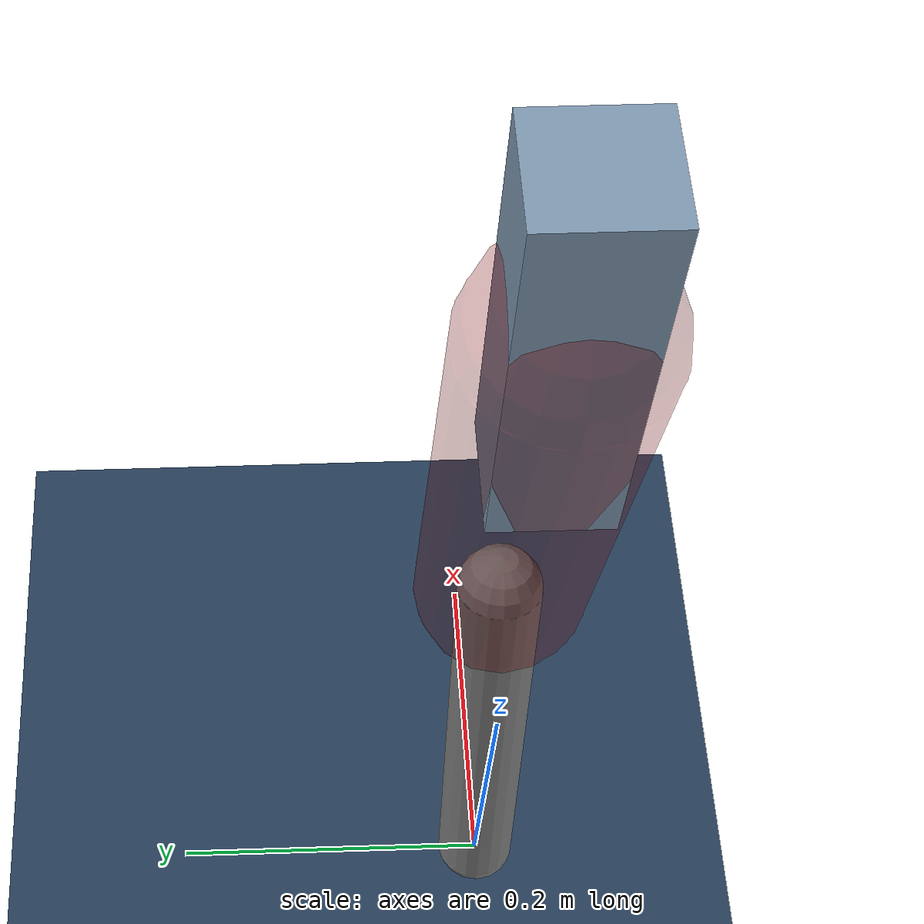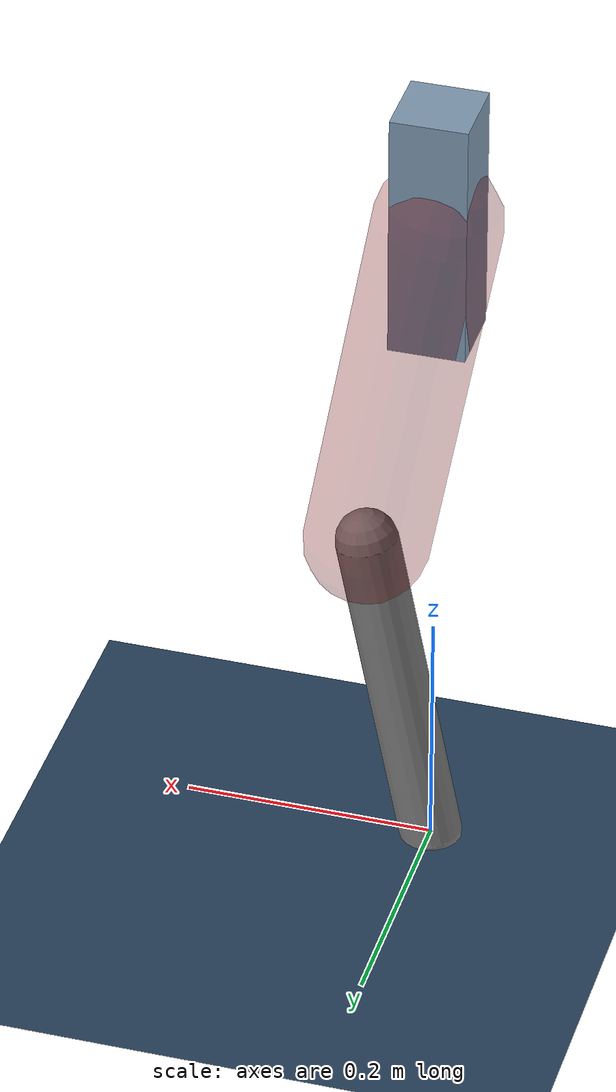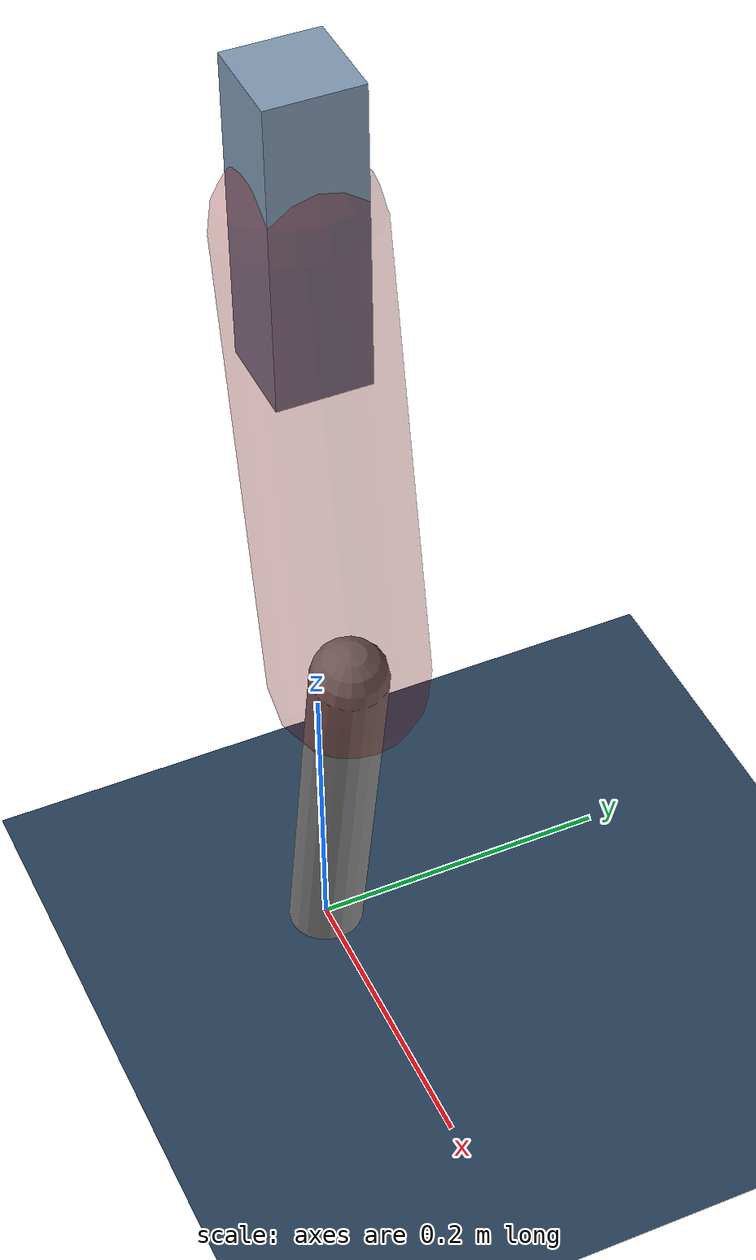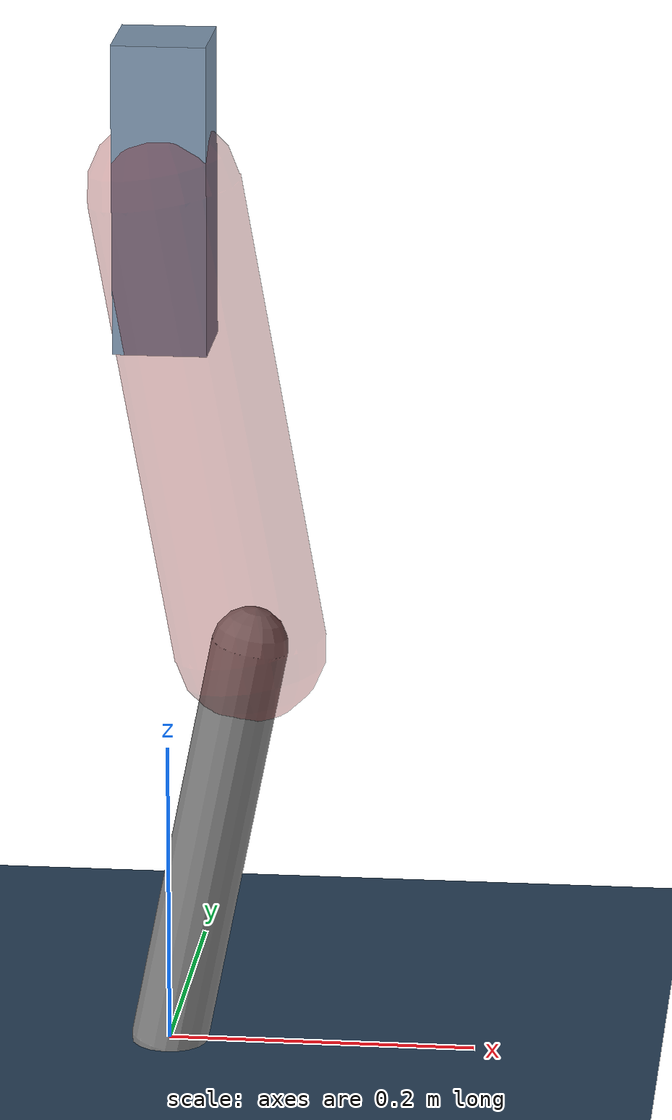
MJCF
<mujoco model="Hopper2D">
	<compiler inertiafromgeom="true" angle="radian" />
	<option timestep="0.001" integrator="implicit" cone="elliptic" solver="Newton" tolerance="1e-10" />

	<default>
		<geom contype="1" conaffinity="1" condim="3" friction="2 0.005 0.0001" solref="0.005 1" />
		<joint limited="true" damping="0.1" />
	</default>

	<asset>
		<texture name="skybox" type="skybox" builtin="gradient" rgb1=".4 .6 .8" rgb2="0 0 0" width="800" height="800" />
		<texture name="grid" type="2d" builtin="checker" rgb1=".1 .2 .3" rgb2=".2 .3 .4" width="300" height="300" mark="edge" markrgb=".2 .3 .4" />
		<material name="ground" texture="grid" texrepeat="1 1" texuniform="true" reflectance="0.1" />
		<material name="leg" rgba="0.5 0.6 0.7 1" />
	</asset>

	<worldbody>

		<geom name="floor" type="plane" size="5 5 0.25" material="ground" />

		<light directional="false" diffuse="0.8 0.8 0.8" specular="0.3 0.3 0.3" pos="0 0 2" dir="0 0 -1" />
		<light mode="targetbodycom" target="base" directional="false" diffuse="0.8 0.8 0.8" specular="0.3 0.3 0.3" pos="0 0 2" dir="0 0 -1" />

		<camera name="fixed" pos="0 -2 1" xyaxes="1 0 0 0 0 1" />
		<camera name="tracking" mode="trackcom" pos="0 -3 1" />

		<body name="root" pos="0 0 0.5719300314808149">
			<joint name="slide_x" type="slide" axis="1 0 0" range="-100 100" />
			<joint name="slide_z" type="slide" axis="0 0 1" range="0 10" />

			<body name="base" pos="0 0 0">
				<geom name="torso" type="box" size="0.03 0.03 0.1" mass="4.192" material="leg" />

				<body name="link1" pos="0 0 0" euler="0 1.3936164507911641 0">
					<joint type="hinge" axis="0 -1 0" pos="0 0 0" name="hinge1" limited="true" range="-3.14 3.14" stiffness="0" damping="0.1" />
					<geom name="thigh" type="capsule" fromto="0 0 0 0.30438823387043035 0 0" size="0.05" rgba="0.5 0 0 0.3" mass="1.000648231450162" />

					<body name="link2" pos="0.30438823387043035 0 0" euler="0 0.37170768075936483 0">
						<joint type="hinge" axis="0 -1 0" pos="0 0 0" name="hinge2" limited="true" range="-3.14 3.14" stiffness="0" damping="0.1" />
						<geom name="shank" type="capsule" fromto="0 0 0 0.27754179761038456 0 0" size="0.025" mass="0.46513343808830765" />

					</body>
				</body>
			</body>
		</body>
	</worldbody>

	<actuator>
		<motor name="torque1" joint="hinge1" ctrlrange="-221.81874734601834 221.81874734601834" ctrllimited="true" gear="1" />
		<motor name="torque2" joint="hinge2" ctrlrange="-147.73197290770278 147.73197290770278" ctrllimited="true" gear="1" />
	</actuator>
</mujoco>
